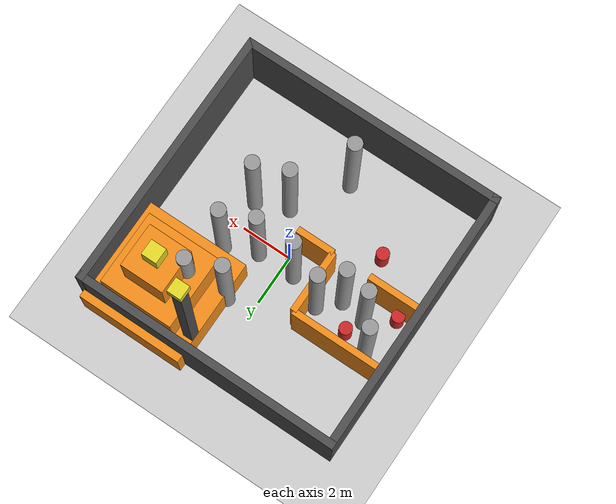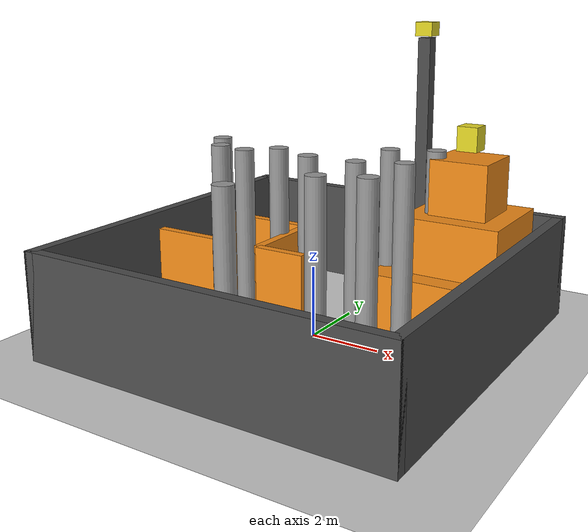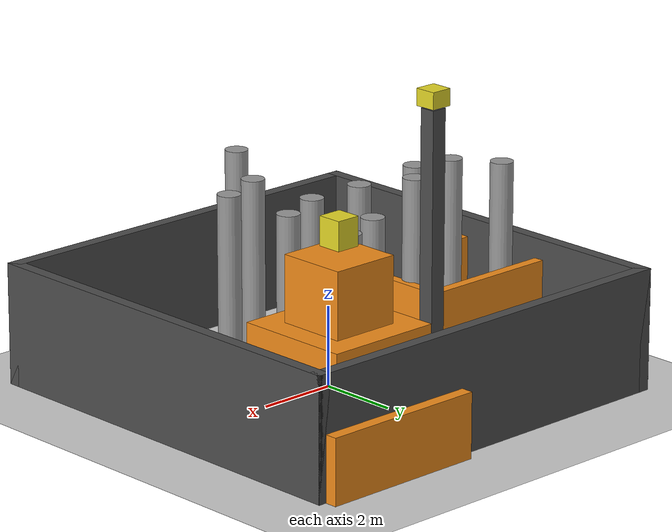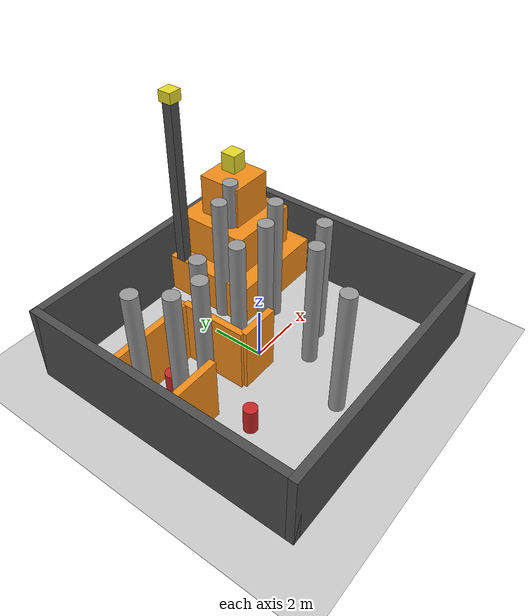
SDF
<?xml version="1.0"?>
<sdf version="1.6">
  <world name="hassan_pyramid_labyrinth">

    <physics type="ode">
      <max_step_size>0.01</max_step_size>
      <real_time_factor>1</real_time_factor>
      <real_time_update_rate>100</real_time_update_rate>
      <ode>
        <solver>
          <type>quick</type>
          <iters>50</iters>
          <sor>1.3</sor>
        </solver>
        <constraints>
          <cfm>0</cfm>
          <erp>0.2</erp>
          <contact_max_correcting_vel>100</contact_max_correcting_vel>
          <contact_surface_layer>0.001</contact_surface_layer>
        </constraints>
      </ode>
    </physics>

    <scene>
      <ambient>0.45 0.30 0.15 1.0</ambient>
      <background>0.55 0.40 0.25 1.0</background>
      <shadows>false</shadows>
      <grid>false</grid>
      <fog>
        <color>0.72 0.57 0.37 1.0</color>
        <type>linear</type>
        <start>6.0</start>
        <end>15.0</end>
        <density>0.07</density>
      </fog>
    </scene>

    <light type="directional" name="golden_sun">
      <cast_shadows>false</cast_shadows>
      <pose>0 0 20 0 0 0</pose>
      <diffuse>1.00 0.78 0.42 1.0</diffuse>
      <specular>0.55 0.32 0.10 1.0</specular>
      <direction>-0.40 0.25 -0.85</direction>
      <attenuation>
        <range>1000</range>
        <constant>0.9</constant>
        <linear>0.01</linear>
        <quadratic>0.001</quadratic>
      </attenuation>
    </light>

    <light type="directional" name="sky_fill">
      <cast_shadows>false</cast_shadows>
      <pose>0 0 20 0 0 0</pose>
      <diffuse>0.22 0.20 0.32 1.0</diffuse>
      <specular>0.00 0.00 0.00 1.0</specular>
      <direction>0.10 -0.05 -1.00</direction>
      <attenuation>
        <range>1000</range>
        <constant>1.0</constant>
        <linear>0.0</linear>
        <quadratic>0.0</quadratic>
      </attenuation>
    </light>

    <model name="ground_plane">
      <static>true</static>
      <pose>0 0 0 0 0 0</pose>
      <link name="link">
        <collision name="collision">
          <geometry>
            <plane><normal>0 0 1</normal><size>22 22</size></plane>
          </geometry>
          <surface>
            <friction><ode><mu>0.65</mu><mu2>0.65</mu2></ode></friction>
          </surface>
        </collision>
        <visual name="visual">
          <geometry>
            <plane><normal>0 0 1</normal><size>22 22</size></plane>
          </geometry>
          <material>
            <script>
              <uri>file://media/materials/scripts/gazebo.material</uri>
              <name>Gazebo/Grey</name>
            </script>
          </material>
        </visual>
      </link>
    </model>

    <model name="boundary_north">
      <static>true</static>
      <pose>0 5.15 1.5 0 0 0</pose>
      <link name="link">
        <collision name="collision">
          <geometry><box><size>10.6 0.3 3.0</size></box></geometry>
        </collision>
        <visual name="visual">
          <geometry><box><size>10.6 0.3 3.0</size></box></geometry>
          <material>
            <script>
              <uri>file://media/materials/scripts/gazebo.material</uri>
              <name>Gazebo/DarkGrey</name>
            </script>
          </material>
        </visual>
      </link>
    </model>

    <model name="boundary_south">
      <static>true</static>
      <pose>0 -5.15 1.5 0 0 0</pose>
      <link name="link">
        <collision name="collision">
          <geometry><box><size>10.6 0.3 3.0</size></box></geometry>
        </collision>
        <visual name="visual">
          <geometry><box><size>10.6 0.3 3.0</size></box></geometry>
          <material>
            <script>
              <uri>file://media/materials/scripts/gazebo.material</uri>
              <name>Gazebo/DarkGrey</name>
            </script>
          </material>
        </visual>
      </link>
    </model>

    <model name="boundary_east">
      <static>true</static>
      <pose>5.15 0 1.5 0 0 0</pose>
      <link name="link">
        <collision name="collision">
          <geometry><box><size>0.3 10.6 3.0</size></box></geometry>
        </collision>
        <visual name="visual">
          <geometry><box><size>0.3 10.6 3.0</size></box></geometry>
          <material>
            <script>
              <uri>file://media/materials/scripts/gazebo.material</uri>
              <name>Gazebo/DarkGrey</name>
            </script>
          </material>
        </visual>
      </link>
    </model>

    <model name="boundary_west">
      <static>true</static>
      <pose>-5.15 0 1.5 0 0 0</pose>
      <link name="link">
        <collision name="collision">
          <geometry><box><size>0.3 10.6 3.0</size></box></geometry>
        </collision>
        <visual name="visual">
          <geometry><box><size>0.3 10.6 3.0</size></box></geometry>
          <material>
            <script>
              <uri>file://media/materials/scripts/gazebo.material</uri>
              <name>Gazebo/DarkGrey</name>
            </script>
          </material>
        </visual>
      </link>
    </model>

    <model name="pyramid_l1">
      <static>true</static>
      <pose>3.0 3.5 0.8 0 0 0</pose>
      <link name="link">
        <collision name="collision">
          <geometry><box><size>4.2 4.2 1.6</size></box></geometry>
        </collision>
        <visual name="visual">
          <geometry><box><size>4.2 4.2 1.6</size></box></geometry>
          <material>
            <script>
              <uri>file://media/materials/scripts/gazebo.material</uri>
              <name>Gazebo/Orange</name>
            </script>
          </material>
        </visual>
      </link>
    </model>

    <model name="pyramid_l2">
      <static>true</static>
      <pose>3.0 3.5 2.4 0 0 0</pose>
      <link name="link">
        <collision name="collision">
          <geometry><box><size>2.9 2.9 1.6</size></box></geometry>
        </collision>
        <visual name="visual">
          <geometry><box><size>2.9 2.9 1.6</size></box></geometry>
          <material>
            <script>
              <uri>file://media/materials/scripts/gazebo.material</uri>
              <name>Gazebo/Orange</name>
            </script>
          </material>
        </visual>
      </link>
    </model>

    <model name="pyramid_l3">
      <static>true</static>
      <pose>3.0 3.5 4.0 0 0 0</pose>
      <link name="link">
        <collision name="collision">
          <geometry><box><size>1.7 1.7 1.6</size></box></geometry>
        </collision>
        <visual name="visual">
          <geometry><box><size>1.7 1.7 1.6</size></box></geometry>
          <material>
            <script>
              <uri>file://media/materials/scripts/gazebo.material</uri>
              <name>Gazebo/Orange</name>
            </script>
          </material>
        </visual>
      </link>
    </model>

    <model name="pyramid_l4">
      <static>true</static>
      <pose>3.0 3.5 5.35 0 0 0</pose>
      <link name="link">
        <collision name="collision">
          <geometry><box><size>0.6 0.6 0.7</size></box></geometry>
        </collision>
        <visual name="visual">
          <geometry><box><size>0.6 0.6 0.7</size></box></geometry>
          <material>
            <script>
              <uri>file://media/materials/scripts/gazebo.material</uri>
              <name>Gazebo/Yellow</name>
            </script>
          </material>
        </visual>
      </link>
    </model>

    <model name="obelisk">
      <static>true</static>
      <pose>1.1 4.5 4.0 0 0 0</pose>
      <link name="link">
        <collision name="collision">
          <geometry><box><size>0.38 0.38 8.0</size></box></geometry>
        </collision>
        <visual name="visual">
          <geometry><box><size>0.38 0.38 8.0</size></box></geometry>
          <material>
            <script>
              <uri>file://media/materials/scripts/gazebo.material</uri>
              <name>Gazebo/DarkGrey</name>
            </script>
          </material>
        </visual>
      </link>
    </model>

    <model name="obelisk_cap">
      <static>true</static>
      <pose>1.1 4.5 8.25 0 0 0</pose>
      <link name="link">
        <collision name="collision">
          <geometry><box><size>0.52 0.52 0.4</size></box></geometry>
        </collision>
        <visual name="visual">
          <geometry><box><size>0.52 0.52 0.4</size></box></geometry>
          <material>
            <script>
              <uri>file://media/materials/scripts/gazebo.material</uri>
              <name>Gazebo/Yellow</name>
            </script>
          </material>
        </visual>
      </link>
    </model>

    <model name="pillar_nav_1">
      <static>true</static>
      <pose>-2.5 0.3 2.5 0 0 0</pose>
      <link name="link">
        <collision name="collision">
          <geometry><cylinder><radius>0.28</radius><length>5.0</length></cylinder></geometry>
        </collision>
        <visual name="visual">
          <geometry><cylinder><radius>0.28</radius><length>5.0</length></cylinder></geometry>
          <material>
            <script>
              <uri>file://media/materials/scripts/gazebo.material</uri>
              <name>Gazebo/Grey</name>
            </script>
          </material>
        </visual>
      </link>
    </model>

    <model name="pillar_nav_2">
      <static>true</static>
      <pose>-3.5 0.5 2.5 0 0 0</pose>
      <link name="link">
        <collision name="collision">
          <geometry><cylinder><radius>0.28</radius><length>5.0</length></cylinder></geometry>
        </collision>
        <visual name="visual">
          <geometry><cylinder><radius>0.28</radius><length>5.0</length></cylinder></geometry>
          <material>
            <script>
              <uri>file://media/materials/scripts/gazebo.material</uri>
              <name>Gazebo/Grey</name>
            </script>
          </material>
        </visual>
      </link>
    </model>

    <model name="pillar_nav_3">
      <static>true</static>
      <pose>-4.2 1.5 2.5 0 0 0</pose>
      <link name="link">
        <collision name="collision">
          <geometry><cylinder><radius>0.28</radius><length>5.0</length></cylinder></geometry>
        </collision>
        <visual name="visual">
          <geometry><cylinder><radius>0.28</radius><length>5.0</length></cylinder></geometry>
          <material>
            <script>
              <uri>file://media/materials/scripts/gazebo.material</uri>
              <name>Gazebo/Grey</name>
            </script>
          </material>
        </visual>
      </link>
    </model>

    <model name="pillar_nav_4">
      <static>true</static>
      <pose>-1.8 1.0 2.5 0 0 0</pose>
      <link name="link">
        <collision name="collision">
          <geometry><cylinder><radius>0.28</radius><length>5.0</length></cylinder></geometry>
        </collision>
        <visual name="visual">
          <geometry><cylinder><radius>0.28</radius><length>5.0</length></cylinder></geometry>
          <material>
            <script>
              <uri>file://media/materials/scripts/gazebo.material</uri>
              <name>Gazebo/Grey</name>
            </script>
          </material>
        </visual>
      </link>
    </model>

    <model name="pillar_nav_5">
      <static>true</static>
      <pose>-0.5 0.5 2.5 0 0 0</pose>
      <link name="link">
        <collision name="collision">
          <geometry><cylinder><radius>0.28</radius><length>5.0</length></cylinder></geometry>
        </collision>
        <visual name="visual">
          <geometry><cylinder><radius>0.28</radius><length>5.0</length></cylinder></geometry>
          <material>
            <script>
              <uri>file://media/materials/scripts/gazebo.material</uri>
              <name>Gazebo/Grey</name>
            </script>
          </material>
        </visual>
      </link>
    </model>

    <model name="pillar_dec_1">
      <static>true</static>
      <pose>1.0 -1.5 2.5 0 0 0</pose>
      <link name="link">
        <collision name="collision">
          <geometry><cylinder><radius>0.28</radius><length>5.0</length></cylinder></geometry>
        </collision>
        <visual name="visual">
          <geometry><cylinder><radius>0.28</radius><length>5.0</length></cylinder></geometry>
          <material>
            <script>
              <uri>file://media/materials/scripts/gazebo.material</uri>
              <name>Gazebo/Grey</name>
            </script>
          </material>
        </visual>
      </link>
    </model>

    <model name="pillar_dec_2">
      <static>true</static>
      <pose>1.0 0.5 2.5 0 0 0</pose>
      <link name="link">
        <collision name="collision">
          <geometry><cylinder><radius>0.28</radius><length>5.0</length></cylinder></geometry>
        </collision>
        <visual name="visual">
          <geometry><cylinder><radius>0.28</radius><length>5.0</length></cylinder></geometry>
          <material>
            <script>
              <uri>file://media/materials/scripts/gazebo.material</uri>
              <name>Gazebo/Grey</name>
            </script>
          </material>
        </visual>
      </link>
    </model>

    <model name="pillar_dec_3">
      <static>true</static>
      <pose>1.0 2.5 2.5 0 0 0</pose>
      <link name="link">
        <collision name="collision">
          <geometry><cylinder><radius>0.28</radius><length>5.0</length></cylinder></geometry>
        </collision>
        <visual name="visual">
          <geometry><cylinder><radius>0.28</radius><length>5.0</length></cylinder></geometry>
          <material>
            <script>
              <uri>file://media/materials/scripts/gazebo.material</uri>
              <name>Gazebo/Grey</name>
            </script>
          </material>
        </visual>
      </link>
    </model>

    <model name="pillar_dec_4">
      <static>true</static>
      <pose>2.2 -1.0 2.5 0 0 0</pose>
      <link name="link">
        <collision name="collision">
          <geometry><cylinder><radius>0.28</radius><length>5.0</length></cylinder></geometry>
        </collision>
        <visual name="visual">
          <geometry><cylinder><radius>0.28</radius><length>5.0</length></cylinder></geometry>
          <material>
            <script>
              <uri>file://media/materials/scripts/gazebo.material</uri>
              <name>Gazebo/Grey</name>
            </script>
          </material>
        </visual>
      </link>
    </model>

    <model name="pillar_dec_5">
      <static>true</static>
      <pose>2.2 1.0 2.5 0 0 0</pose>
      <link name="link">
        <collision name="collision">
          <geometry><cylinder><radius>0.28</radius><length>5.0</length></cylinder></geometry>
        </collision>
        <visual name="visual">
          <geometry><cylinder><radius>0.28</radius><length>5.0</length></cylinder></geometry>
          <material>
            <script>
              <uri>file://media/materials/scripts/gazebo.material</uri>
              <name>Gazebo/Grey</name>
            </script>
          </material>
        </visual>
      </link>
    </model>

    <model name="pillar_dec_6">
      <static>true</static>
      <pose>2.2 3.0 2.5 0 0 0</pose>
      <link name="link">
        <collision name="collision">
          <geometry><cylinder><radius>0.28</radius><length>5.0</length></cylinder></geometry>
        </collision>
        <visual name="visual">
          <geometry><cylinder><radius>0.28</radius><length>5.0</length></cylinder></geometry>
          <material>
            <script>
              <uri>file://media/materials/scripts/gazebo.material</uri>
              <name>Gazebo/Grey</name>
            </script>
          </material>
        </visual>
      </link>
    </model>

    <model name="pillar_dec_7">
      <static>true</static>
      <pose>-0.3 -3.5 2.5 0 0 0</pose>
      <link name="link">
        <collision name="collision">
          <geometry><cylinder><radius>0.28</radius><length>5.0</length></cylinder></geometry>
        </collision>
        <visual name="visual">
          <geometry><cylinder><radius>0.28</radius><length>5.0</length></cylinder></geometry>
          <material>
            <script>
              <uri>file://media/materials/scripts/gazebo.material</uri>
              <name>Gazebo/Grey</name>
            </script>
          </material>
        </visual>
      </link>
    </model>

    <model name="hedge_h1">
      <static>true</static>
      <pose>-4.0 -0.5 1.25 0 0 0</pose>
      <link name="link">
        <collision name="collision">
          <geometry><box><size>2.0 0.25 2.5</size></box></geometry>
        </collision>
        <visual name="visual">
          <geometry><box><size>2.0 0.25 2.5</size></box></geometry>
          <material>
            <script>
              <uri>file://media/materials/scripts/gazebo.material</uri>
              <name>Gazebo/Orange</name>
            </script>
          </material>
        </visual>
      </link>
    </model>

    <model name="hedge_h2">
      <static>true</static>
      <pose>-0.75 -0.5 1.25 0 0 0</pose>
      <link name="link">
        <collision name="collision">
          <geometry><box><size>1.5 0.25 2.5</size></box></geometry>
        </collision>
        <visual name="visual">
          <geometry><box><size>1.5 0.25 2.5</size></box></geometry>
          <material>
            <script>
              <uri>file://media/materials/scripts/gazebo.material</uri>
              <name>Gazebo/Orange</name>
            </script>
          </material>
        </visual>
      </link>
    </model>

    <model name="hedge_h3">
      <static>true</static>
      <pose>-3.25 2.0 1.25 0 0 0</pose>
      <link name="link">
        <collision name="collision">
          <geometry><box><size>3.5 0.25 2.5</size></box></geometry>
        </collision>
        <visual name="visual">
          <geometry><box><size>3.5 0.25 2.5</size></box></geometry>
          <material>
            <script>
              <uri>file://media/materials/scripts/gazebo.material</uri>
              <name>Gazebo/Orange</name>
            </script>
          </material>
        </visual>
      </link>
    </model>

    <model name="hedge_v1">
      <static>true</static>
      <pose>-1.5 0.75 1.25 0 0 0</pose>
      <link name="link">
        <collision name="collision">
          <geometry><box><size>0.25 2.5 2.5</size></box></geometry>
        </collision>
        <visual name="visual">
          <geometry><box><size>0.25 2.5 2.5</size></box></geometry>
          <material>
            <script>
              <uri>file://media/materials/scripts/gazebo.material</uri>
              <name>Gazebo/Orange</name>
            </script>
          </material>
        </visual>
      </link>
    </model>

    <model name="waypoint_1">
      <static>true</static>
      <pose>-2.8 -1.8 0.5 0 0 0</pose>
      <link name="link">
        <collision name="collision">
          <geometry><cylinder><radius>0.25</radius><length>1.0</length></cylinder></geometry>
        </collision>
        <visual name="visual">
          <geometry><cylinder><radius>0.25</radius><length>1.0</length></cylinder></geometry>
          <material>
            <script>
              <uri>file://media/materials/scripts/gazebo.material</uri>
              <name>Gazebo/Red</name>
            </script>
          </material>
        </visual>
      </link>
    </model>

    <model name="waypoint_2">
      <static>true</static>
      <pose>-4.5 -0.2 0.5 0 0 0</pose>
      <link name="link">
        <collision name="collision">
          <geometry><cylinder><radius>0.25</radius><length>1.0</length></cylinder></geometry>
        </collision>
        <visual name="visual">
          <geometry><cylinder><radius>0.25</radius><length>1.0</length></cylinder></geometry>
          <material>
            <script>
              <uri>file://media/materials/scripts/gazebo.material</uri>
              <name>Gazebo/Red</name>
            </script>
          </material>
        </visual>
      </link>
    </model>

    <model name="waypoint_3">
      <static>true</static>
      <pose>-3.2 1.2 0.5 0 0 0</pose>
      <link name="link">
        <collision name="collision">
          <geometry><cylinder><radius>0.25</radius><length>1.0</length></cylinder></geometry>
        </collision>
        <visual name="visual">
          <geometry><cylinder><radius>0.25</radius><length>1.0</length></cylinder></geometry>
          <material>
            <script>
              <uri>file://media/materials/scripts/gazebo.material</uri>
              <name>Gazebo/Red</name>
            </script>
          </material>
        </visual>
      </link>
    </model>

  </world>
</sdf>
